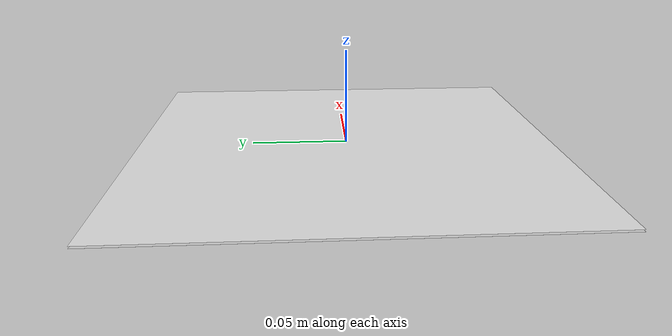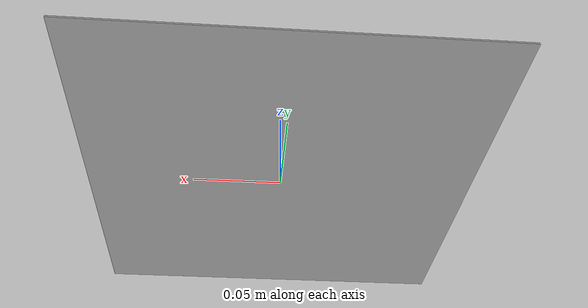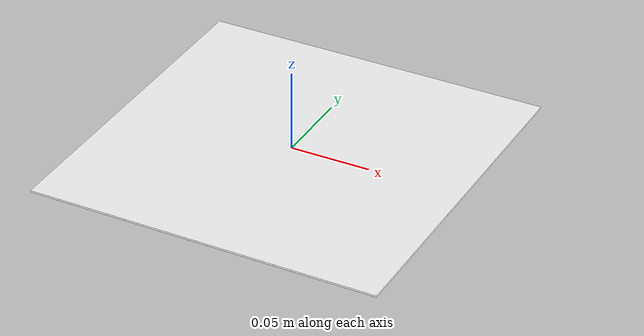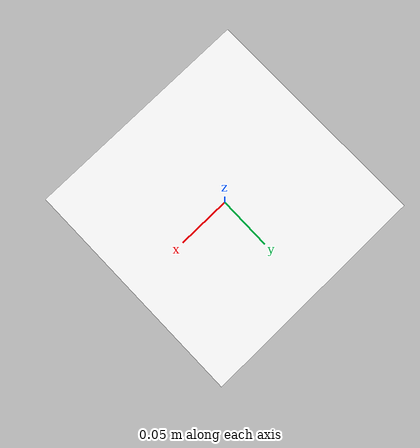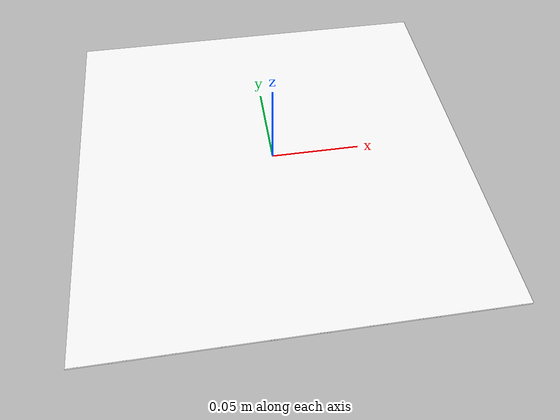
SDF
<?xml version='1.0'?>
<sdf version='1.5'>
  <model name='aruco_array_6x6_0_3'>

    <link name='marker'>
      <pose frame=''>0 0 0 0 0 0</pose>
      <inertial>
        <pose>0 0 0 0 0 0</pose>
        <mass>0.015</mass>
        <inertia>
          <ixx>0</ixx>
          <ixy>0</ixy>
          <ixz>0</ixz>
          <iyy>0</iyy>
          <iyz>0</iyz>
          <izz>0</izz>
        </inertia>
      </inertial>
      <visual name='visual'>
        <geometry>
          <box>
            <size>0.2200 0.2200 1e-5</size>
          </box>
        </geometry>
        <material>
          <script>
            <uri>model://fiducials/aruco_array_6x6_0_3/materials/scripts</uri>
            <uri>model://fiducials/aruco_array_6x6_0_3/materials/textures</uri>
            <name>ArucoArray/Marker</name>
          </script>
          <ambient>1 1 1 1</ambient>
          <diffuse>1 1 1 1</diffuse>
          <specular>0 0 0 1</specular>
          <emissive>1 1 1 0</emissive>
          <shader type='vertex'>
            <normal_map>__default__</normal_map>
          </shader>
        </material>
        <pose frame=''>0 0 0 0 -0 0</pose>
        <cast_shadows>1</cast_shadows>
        <transparency>0</transparency>
      </visual>
      <collision name='collision'>
        <laser_retro>0</laser_retro>
        <max_contacts>10</max_contacts>
        <pose frame=''>0 0 0 0 -0 0</pose>
        <geometry>
          <box>
            <size>0.2200 0.2200 1e-05</size>
          </box>
        </geometry>
      </collision>
    </link>

    <link name='marker_pad'>
      <pose frame='marker'>0 0 -1e-3 0 -0 0</pose>
      <visual name='visual'>
        <geometry>
          <box>
            <size>0.2200 0.2200 1e-5</size>
          </box>
        </geometry>
        <material>
          <lighting>1</lighting>
          <script>
            <uri>file://media/materials/scripts/gazebo.material</uri>
            <name>Gazebo/White</name>
          </script>
          <ambient>0.3 0.3 0.3 1</ambient>
          <diffuse>0.7 0.7 0.7 1</diffuse>
          <specular>0.01 0.01 0.01 1</specular>
          <emissive>1 1 1 0</emissive>
          <shader type='vertex'>
            <normal_map>__default__</normal_map>
          </shader>
        </material>
        <cast_shadows>1</cast_shadows>
        <transparency>0</transparency>
      </visual>
      <collision name='collision'>
        <laser_retro>0</laser_retro>
        <max_contacts>10</max_contacts>
        <pose frame=''>0 0 0 0 -0 0</pose>
        <geometry>
          <box>
            <size>0.2200 0.2200 1e-5</size>
          </box>
        </geometry>
      </collision>
    </link>

    <joint name='marker_JOINT_marker_pad' type='fixed'>
      <parent>marker</parent>
      <child>marker_pad</child>
      <pose frame=''>0 0 0 0 -0 0</pose>
      <axis>
        <xyz>0 0 1</xyz>
        <limit>
          <upper>0</upper>
          <lower>0</lower>
        </limit>
      </axis>
    </joint>

    <allow_auto_disable>1</allow_auto_disable>

  </model>
</sdf>
